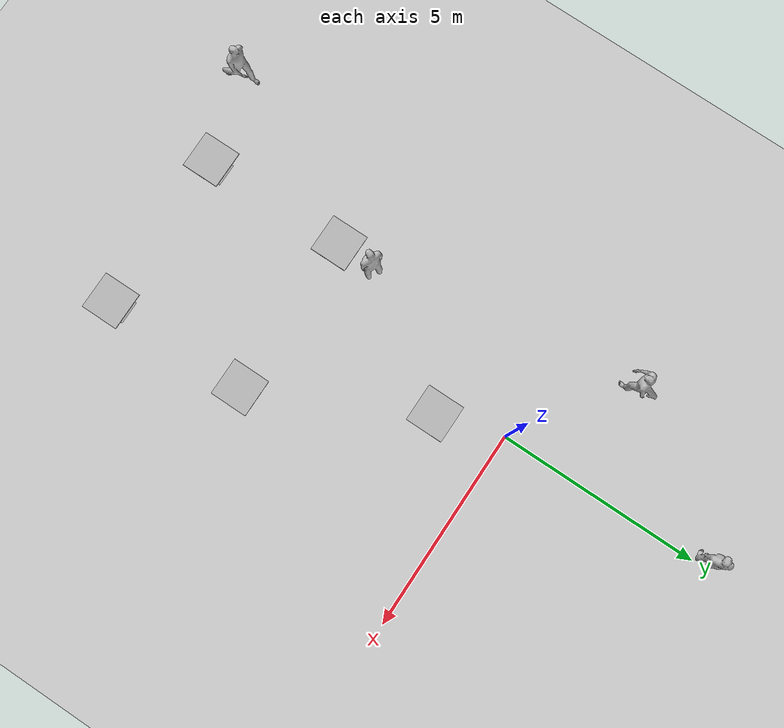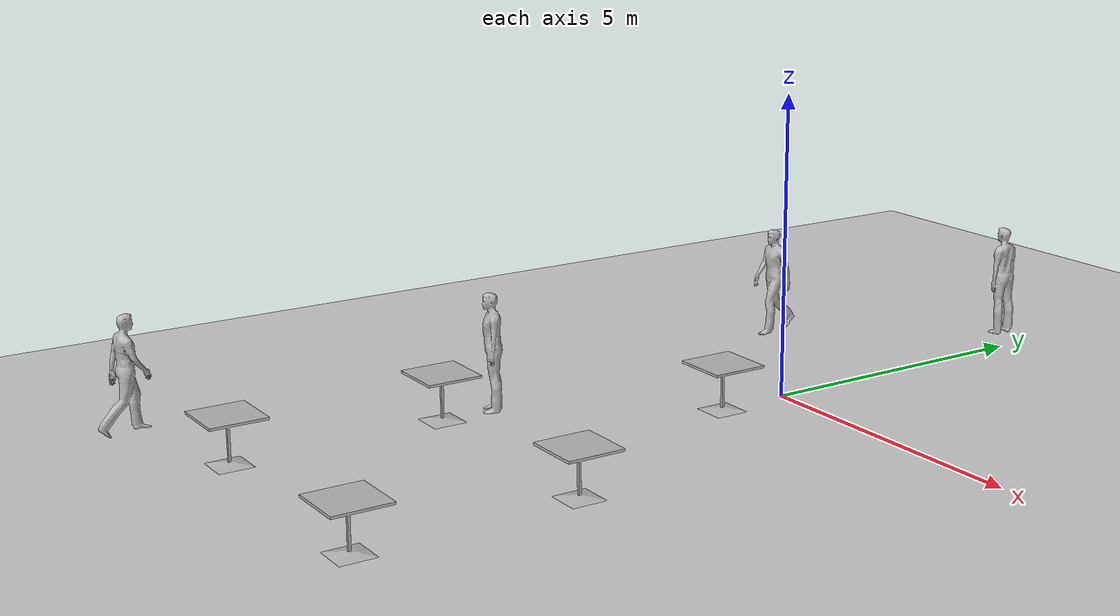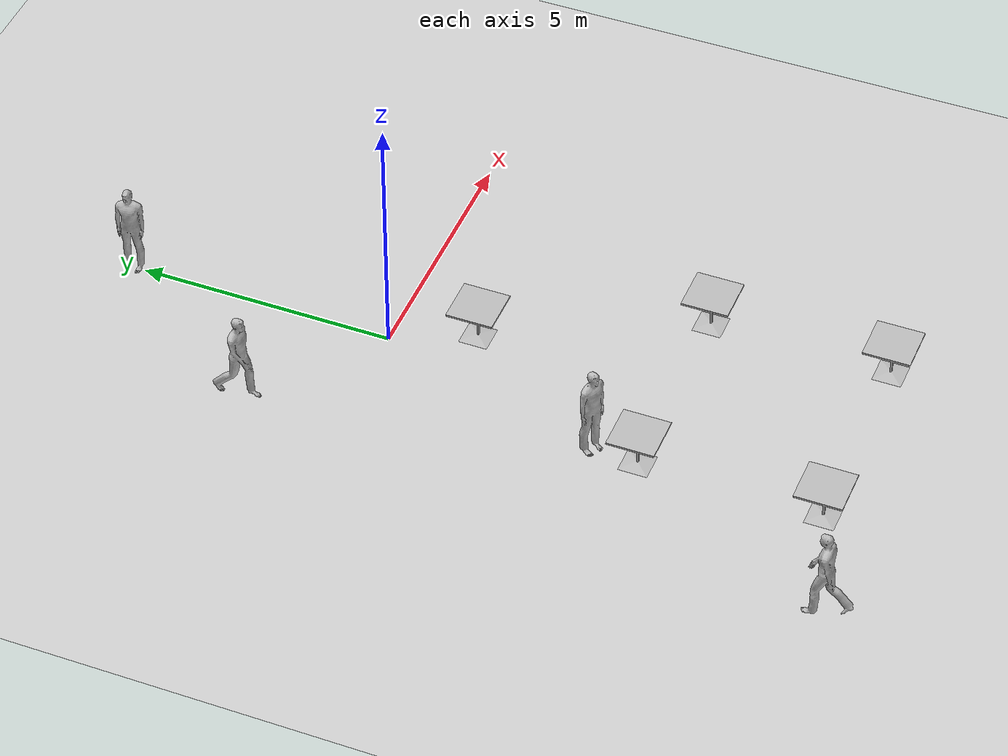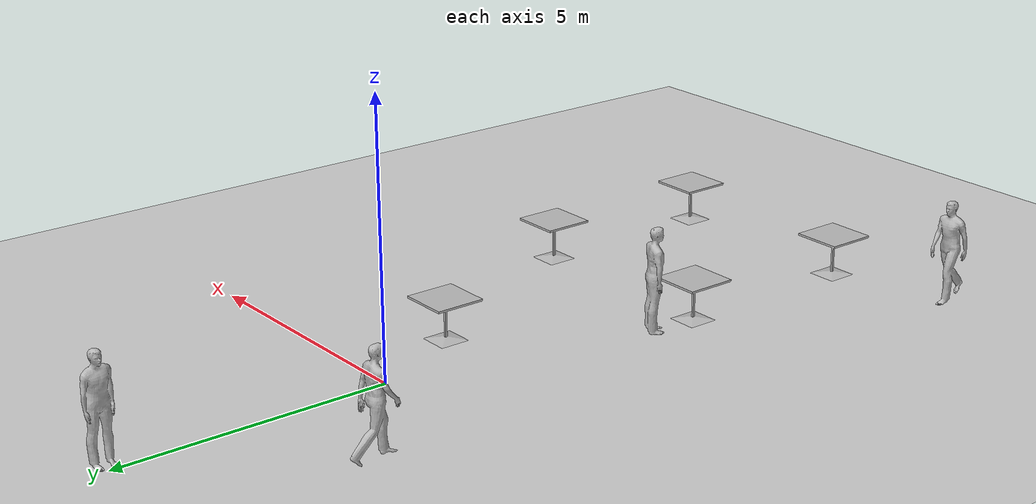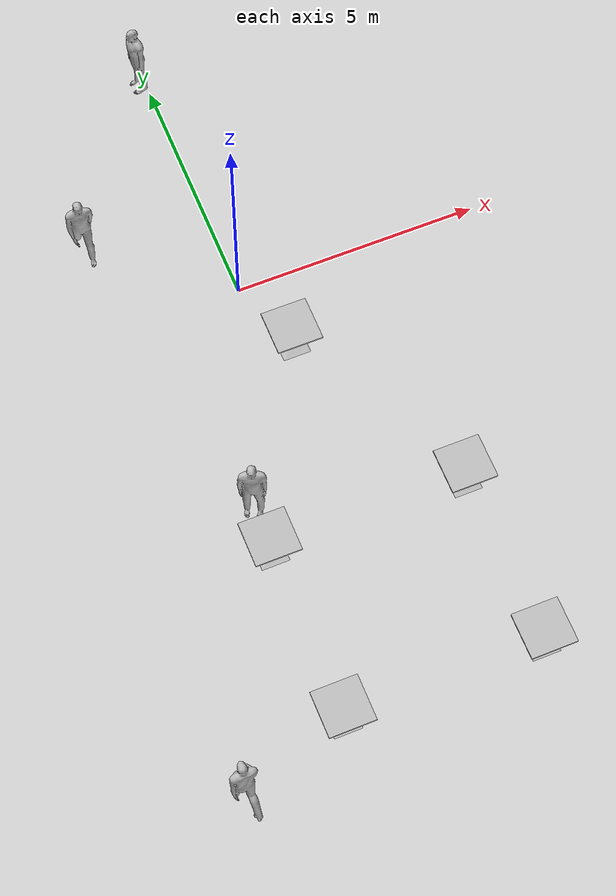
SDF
<sdf version="1.7">
 <world name="default">
  <light name="sun" type="directional">
   <pose>0 0 10 0 -0 0</pose>
   <diffuse>0.8 0.8 0.8 1</diffuse>
   <specular>0.2 0.2 0.2 1</specular>
   <attenuation>
    <range>1000</range>
    <constant>0.9</constant>
    <linear>0.01</linear>
    <quadratic>0.001</quadratic>
   </attenuation>
   <direction>0 0.5 -0.9</direction>
   <spot><inner_angle>0</inner_angle><outer_angle>0</outer_angle><falloff>0</falloff></spot>
  </light>
  <light name="point_light" type="point">
   <pose>0 -0.377195 6.59868 0 -0 0</pose>
   <diffuse>0.784314 0.784314 0.784314 1</diffuse>
   <specular>0.0980392 0.0980392 0.0980392 1</specular>
   <attenuation>
    <range>50</range>
    <constant>0.8</constant>
    <linear>0</linear>
    <quadratic>0.001</quadratic>
   </attenuation>
   <cast_shadows>0</cast_shadows>
   <direction>0 0 -1</direction>
   <spot><inner_angle>0</inner_angle><outer_angle>0</outer_angle><falloff>0</falloff></spot>
  </light>
  <model name="ground_plane">
   <static>1</static>
   <link name="link">
    <collision name="collision">
     <geometry><plane><normal>0 0 1</normal><size>100 100</size></plane></geometry>
     <surface><friction><ode><mu>100</mu><mu2>50</mu2></ode></friction></surface>
    </collision>
    <visual name="visual">
     <cast_shadows>0</cast_shadows>
     <geometry><plane><normal>0 0 1</normal><size>100 100</size></plane></geometry>
     <material>
      <script><uri>file://media/materials/scripts/gazebo.material</uri><name>Gazebo/Grey</name></script>
     </material>
    </visual>
   </link>
  </model>
  <model name="table1">
   <static>1</static>
   <link name="link">
    <collision name="surface">
     <pose>0 0 0.755 0 -0 0</pose>
     <geometry><box><size>0.913 0.913 0.04</size></box></geometry>
    </collision>
    <collision name="column">
     <pose>0 0 0.37 0 -0 0</pose>
     <geometry><box><size>0.042 0.042 0.74</size></box></geometry>
    </collision>
    <collision name="base">
     <pose>0 0 0.02 0 -0 0</pose>
     <geometry><box><size>0.56 0.56 0.04</size></box></geometry>
    </collision>
    <visual name="visual">
     <geometry><mesh><uri>model://cafe_table/meshes/cafe_table.dae</uri></mesh></geometry>
    </visual>
   </link>
   <pose>0.5 -1.6 0.2 0 -0 0</pose>
  </model>
  <model name="table2">
   <static>1</static>
   <link name="link">
    <collision name="surface">
     <pose>0 0 0.755 0 -0 0</pose>
     <geometry><box><size>0.913 0.913 0.04</size></box></geometry>
    </collision>
    <collision name="column">
     <pose>0 0 0.37 0 -0 0</pose>
     <geometry><box><size>0.042 0.042 0.74</size></box></geometry>
    </collision>
    <collision name="base">
     <pose>0 0 0.02 0 -0 0</pose>
     <geometry><box><size>0.56 0.56 0.04</size></box></geometry>
    </collision>
    <visual name="visual">
     <geometry><mesh><uri>model://cafe_table/meshes/cafe_table.dae</uri></mesh></geometry>
    </visual>
   </link>
   <pose>2.4 -5.5 0.2 0 -0 0</pose>
  </model>
  <model name="table3">
   <static>1</static>
   <link name="link">
    <collision name="surface">
     <pose>0 0 0.755 0 -0 0</pose>
     <geometry><box><size>0.913 0.913 0.04</size></box></geometry>
    </collision>
    <collision name="column">
     <pose>0 0 0.37 0 -0 0</pose>
     <geometry><box><size>0.042 0.042 0.74</size></box></geometry>
    </collision>
    <collision name="base">
     <pose>0 0 0.02 0 -0 0</pose>
     <geometry><box><size>0.56 0.56 0.04</size></box></geometry>
    </collision>
    <visual name="visual">
     <geometry><mesh><uri>model://cafe_table/meshes/cafe_table.dae</uri></mesh></geometry>
    </visual>
   </link>
   <pose>-1.5 -5.5 0.2 0 -0 0</pose>
  </model>
  <model name="table4">
   <static>1</static>
   <link name="link">
    <collision name="surface">
     <pose>0 0 0.755 0 -0 0</pose>
     <geometry><box><size>0.913 0.913 0.04</size></box></geometry>
    </collision>
    <collision name="column">
     <pose>0 0 0.37 0 -0 0</pose>
     <geometry><box><size>0.042 0.042 0.74</size></box></geometry>
    </collision>
    <collision name="base">
     <pose>0 0 0.02 0 -0 0</pose>
     <geometry><box><size>0.56 0.56 0.04</size></box></geometry>
    </collision>
    <visual name="visual">
     <geometry><mesh><uri>model://cafe_table/meshes/cafe_table.dae</uri></mesh></geometry>
    </visual>
   </link>
   <pose>2.4 -9 0.2 0 -0 0</pose>
  </model>
  <model name="table5">
   <static>1</static>
   <link name="link">
    <collision name="surface">
     <pose>0 0 0.755 0 -0 0</pose>
     <geometry><box><size>0.913 0.913 0.04</size></box></geometry>
    </collision>
    <collision name="column">
     <pose>0 0 0.37 0 -0 0</pose>
     <geometry><box><size>0.042 0.042 0.74</size></box></geometry>
    </collision>
    <collision name="base">
     <pose>0 0 0.02 0 -0 0</pose>
     <geometry><box><size>0.56 0.56 0.04</size></box></geometry>
    </collision>
    <visual name="visual">
     <geometry><mesh><uri>model://cafe_table/meshes/cafe_table.dae</uri></mesh></geometry>
    </visual>
   </link>
   <pose>-1.5 -9 0.2 0 -0 0</pose>
  </model>
  <gravity>0 0 -9.8</gravity>
  <magnetic_field>6e-06 2.3e-05 -4.2e-05</magnetic_field>
  <atmosphere type="adiabatic"/>
  <physics type="ode">
   <max_step_size>0.001</max_step_size>
   <real_time_factor>1</real_time_factor>
   <real_time_update_rate>1000</real_time_update_rate>
  </physics>
  <scene><ambient>0.4 0.4 0.4 1</ambient><background>0.7 0.7 0.7 1</background><shadows>1</shadows></scene>
  <spherical_coordinates>
   <surface_model>EARTH_WGS84</surface_model>
   <latitude_deg>0</latitude_deg>
   <longitude_deg>0</longitude_deg>
   <elevation>0</elevation>
   <heading_deg>0</heading_deg>
  </spherical_coordinates>
  <model name="person_walking">
   <link name="link">
    <inertial>
     <pose>0 0 0.95 0 -0 0</pose>
     <mass>80</mass>
     <inertia><ixx>27.82</ixx><ixy>0</ixy><ixz>0</ixz><iyy>24.88</iyy><iyz>0</iyz><izz>4.57</izz></inertia>
    </inertial>
    <collision name="bottom">
     <pose>0 0 0.01 0 -0 0</pose>
     <geometry><box><size>0.35 0.75 0.02</size></box></geometry>
    </collision>
    <collision name="person">
     <pose>0 0 -0.02 0 -0 0</pose>
     <geometry><mesh><uri>model://person_walking/meshes/walking.dae</uri></mesh></geometry>
    </collision>
    <visual name="visual">
     <pose>0 0 -0.02 0 -0 0</pose>
     <geometry><mesh><uri>model://person_walking/meshes/walking.dae</uri></mesh></geometry>
    </visual>
   </link>
   <pose>-2.52825 1.87181 0.1898 -1e-06 -0 -0.102566</pose>
  </model>
  <model name="person_standing">
   <link name="link">
    <inertial>
     <pose>0 -0.1 0.95 0 -0 0</pose>
     <mass>80</mass>
     <inertia><ixx>24.88</ixx><ixy>0</ixy><ixz>0</ixz><iyy>25.73</iyy><iyz>0</iyz><izz>2.48</izz></inertia>
    </inertial>
    <collision name="bottom">
     <pose>0 -0.1 0.01 0 -0 0</pose>
     <geometry><box><size>0.5 0.35 0.02</size></box></geometry>
    </collision>
    <collision name="person">
     <pose>0 0 0.02 0.04 -0 0</pose>
     <geometry><mesh><uri>model://person_standing/meshes/standing.dae</uri></mesh></geometry>
    </collision>
    <visual name="visual">
     <pose>0 0 0.02 0.04 -0 0</pose>
     <geometry><mesh><uri>model://person_standing/meshes/standing.dae</uri></mesh></geometry>
    </visual>
   </link>
   <pose>-0.088821 5.15445 0.1898 -1e-06 -1e-06 -1.49717</pose>
  </model>
  <model name="person_standing_clone">
   <link name="link">
    <inertial>
     <pose>0 -0.1 0.95 0 -0 0</pose>
     <mass>80</mass>
     <inertia><ixx>24.88</ixx><ixy>0</ixy><ixz>0</ixz><iyy>25.73</iyy><iyz>0</iyz><izz>2.48</izz></inertia>
    </inertial>
    <collision name="bottom">
     <pose>0 -0.1 0.01 0 -0 0</pose>
     <geometry><box><size>0.5 0.35 0.02</size></box></geometry>
    </collision>
    <collision name="person">
     <pose>0 0 0.02 0.04 -0 0</pose>
     <geometry><mesh><uri>model://person_standing/meshes/standing.dae</uri></mesh></geometry>
    </collision>
    <visual name="visual">
     <pose>0 0 0.02 0.04 -0 0</pose>
     <geometry><mesh><uri>model://person_standing/meshes/standing.dae</uri></mesh></geometry>
    </visual>
   </link>
   <pose>-1.44193 -4.52422 0.1898 1e-06 -1e-06 -0.491965</pose>
  </model>
  <model name="person_walking_clone">
   <link name="link">
    <inertial>
     <pose>0 0 0.95 0 -0 0</pose>
     <mass>80</mass>
     <inertia><ixx>27.82</ixx><ixy>0</ixy><ixz>0</ixz><iyy>24.88</iyy><iyz>0</iyz><izz>4.57</izz></inertia>
    </inertial>
    <collision name="bottom">
     <pose>0 0 0.01 0 -0 0</pose>
     <geometry><box><size>0.35 0.75 0.02</size></box></geometry>
    </collision>
    <collision name="person">
     <pose>0 0 -0.02 0 -0 0</pose>
     <geometry><mesh><uri>model://person_walking/meshes/walking.dae</uri></mesh></geometry>
    </collision>
    <visual name="visual">
     <pose>0 0 -0.02 0 -0 0</pose>
     <geometry><mesh><uri>model://person_walking/meshes/walking.dae</uri></mesh></geometry>
    </visual>
   </link>
   <pose>-3.65603 -9.74465 0.189801 1e-06 -1e-06 3.12441</pose>
  </model>
 </world>
</sdf>
